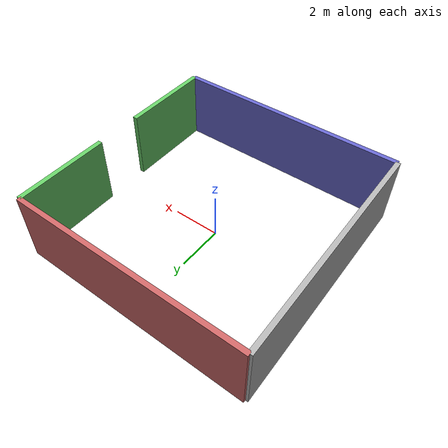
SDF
<sdf version="1.9">
 <world name="baylands_custom">
  <physics type="ode">
   <max_step_size>0.004</max_step_size>
   <real_time_factor>1.0</real_time_factor>
   <real_time_update_rate>250</real_time_update_rate>
  </physics>
  <gravity>0 0 -9.8</gravity>
  <magnetic_field>6e-06 2.3e-05 -4.2e-05</magnetic_field>
  <atmosphere type="adiabatic"/>
  <scene>
   <ambient>0.8 0.5 1</ambient>
   <grid>false</grid>
   <sky><clouds>true</clouds></sky>
   <shadows>1</shadows>
  </scene>
  <light name="sunUTC" type="directional">
   <pose>0 0 500 0 -0 0</pose>
   <cast_shadows>false</cast_shadows>
   <intensity>1</intensity>
   <direction>0.001 0.625 -0.78</direction>
   <diffuse>0.904 0.904 0.904 1</diffuse>
   <specular>0.271 0.271 0.271 1</specular>
   <attenuation><range>2000</range><linear>0</linear><constant>1</constant><quadratic>0</quadratic></attenuation>
  </light>
  <spherical_coordinates>
   <surface_model>EARTH_WGS84</surface_model>
   <world_frame_orientation>ENU</world_frame_orientation>
   <latitude_deg>37.412173071650805</latitude_deg>
   <longitude_deg>-121.998878727967</longitude_deg>
   <elevation>38</elevation>
  </spherical_coordinates>
  <model name="wall_back">
   <static>true</static>
   <pose>-5 0 1.5 0 0 0</pose>
   <link name="link">
    <collision name="collision"><geometry><box><size>0.2 10 3</size></box></geometry></collision>
    <visual name="visual">
     <geometry><box><size>0.2 10 3</size></box></geometry>
     <material><ambient>0.5 0.5 0.5 1</ambient><diffuse>0.7 0.7 0.7 1</diffuse></material>
    </visual>
   </link>
  </model>
  <model name="wall_left">
   <static>true</static>
   <pose>0 5 1.5 0 0 0</pose>
   <link name="link">
    <collision name="collision"><geometry><box><size>10 0.2 3</size></box></geometry></collision>
    <visual name="visual">
     <geometry><box><size>10 0.2 3</size></box></geometry>
     <material><ambient>0.6 0.3 0.3 1</ambient><diffuse>0.8 0.4 0.4 1</diffuse></material>
    </visual>
   </link>
  </model>
  <model name="wall_right">
   <static>true</static>
   <pose>0 -5 1.5 0 0 0</pose>
   <link name="link">
    <collision name="collision"><geometry><box><size>10 0.2 3</size></box></geometry></collision>
    <visual name="visual">
     <geometry><box><size>10 0.2 3</size></box></geometry>
     <material><ambient>0.3 0.3 0.6 1</ambient><diffuse>0.4 0.4 0.8 1</diffuse></material>
    </visual>
   </link>
  </model>
  <model name="wall_front_left">
   <static>true</static>
   <pose>5 3 1.5 0 0 0</pose>
   <link name="link">
    <collision name="collision"><geometry><box><size>0.2 4 3</size></box></geometry></collision>
    <visual name="visual">
     <geometry><box><size>0.2 4 3</size></box></geometry>
     <material><ambient>0.3 0.6 0.3 1</ambient><diffuse>0.4 0.8 0.4 1</diffuse></material>
    </visual>
   </link>
  </model>
  <model name="wall_front_right">
   <static>true</static>
   <pose>5 -3 1.5 0 0 0</pose>
   <link name="link">
    <collision name="collision"><geometry><box><size>0.2 4 3</size></box></geometry></collision>
    <visual name="visual">
     <geometry><box><size>0.2 4 3</size></box></geometry>
     <material><ambient>0.3 0.6 0.3 1</ambient><diffuse>0.4 0.8 0.4 1</diffuse></material>
    </visual>
   </link>
  </model>
 </world>
</sdf>
